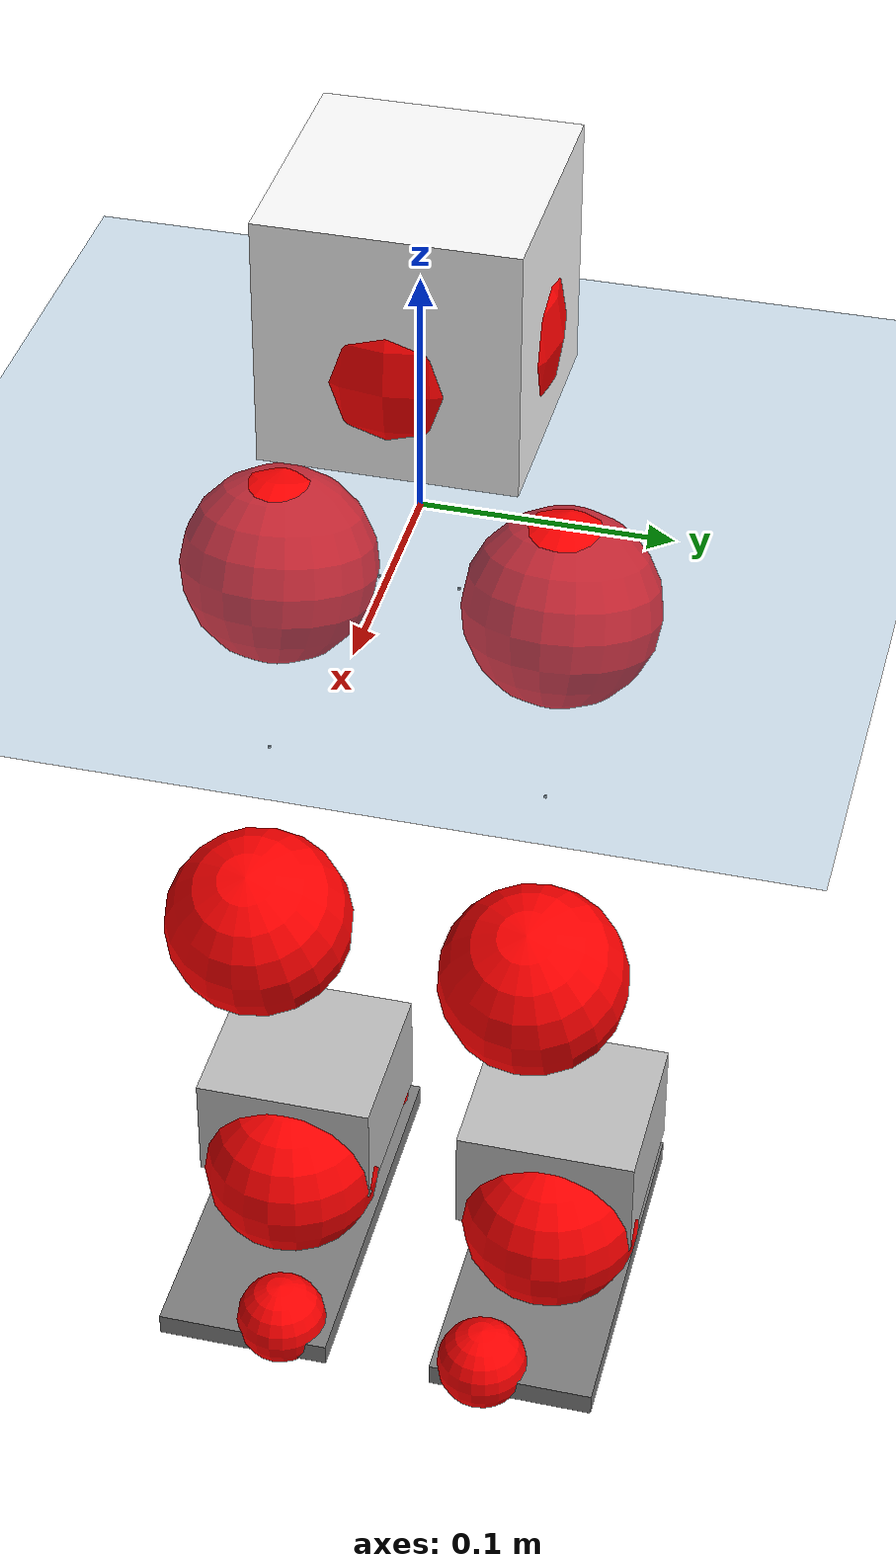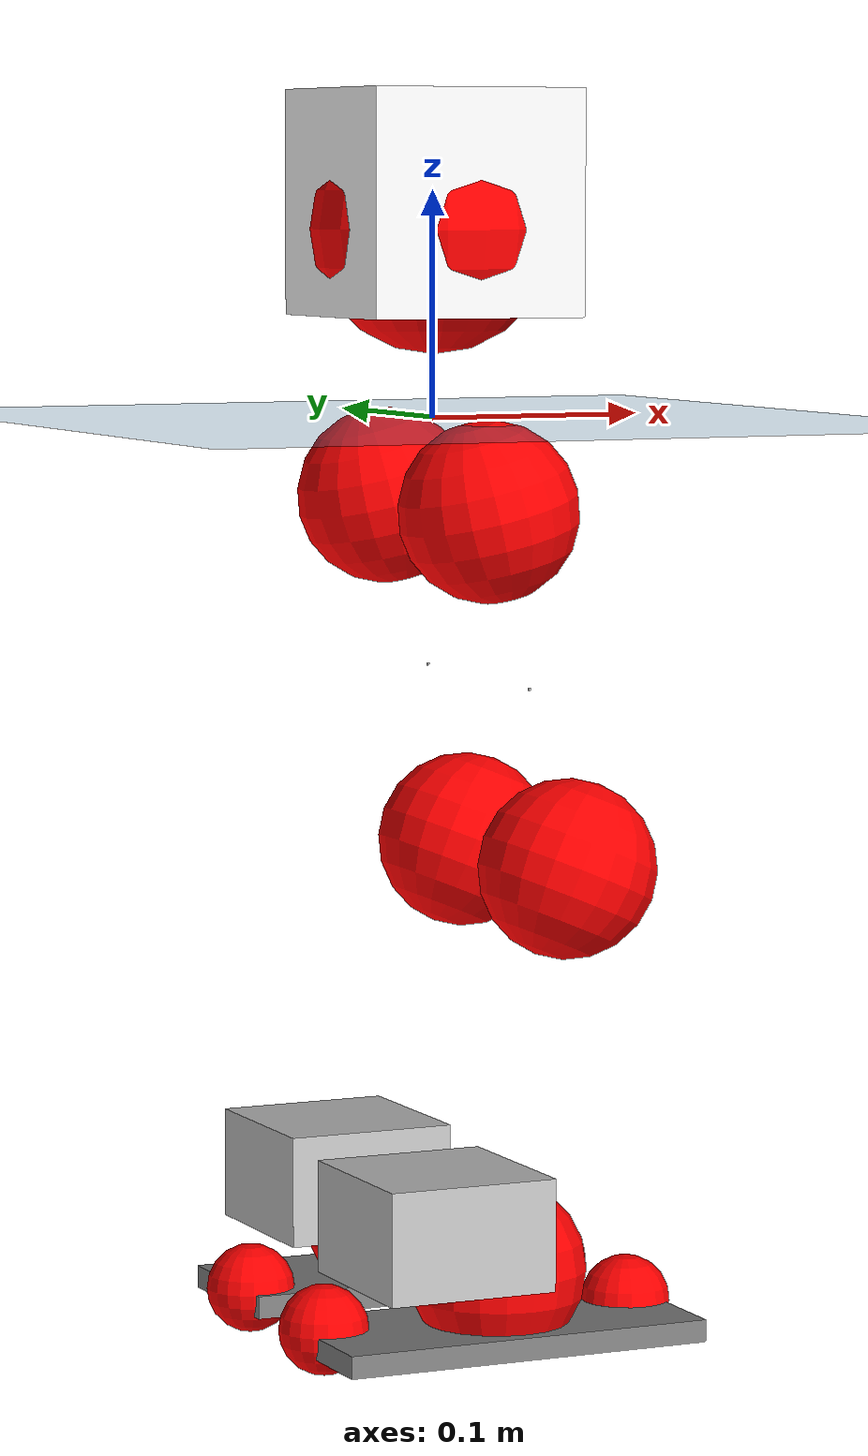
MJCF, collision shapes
<mujoco model="pi_12dof_release_v1">
  <compiler angle="radian" assetdir="assets" balanceinertia="true" inertiafromgeom="false"/>

  <option timestep="0.005" density="1.2" viscosity="2e-05"/>

  <size nkey="1"/>

  <visual>
    <quality shadowsize="8192"/>
    <map shadowclip="0.5"/>
  </visual>

  <default>
    <default class="/">
      <joint armature="0.01" damping="0.01" frictionloss="0.01"/>
      <geom contype="0" conaffinity="0" group="1" solref="-1000 -80"/>
      <site size="0.01 0.005 0.005" group="5"/>
      <general forcelimited="true" biastype="affine" gainprm="20" biasprm="0 -20 -0.5"/>
      <default class="foot">
        <geom size="0.0845 0.036 0.005" type="box" condim="6" group="4" priority="1" friction="0.9 0.2 0.2" solimp="0.015 1 0.005"/>
      </default>
      <default class="reward_collision_sphere">
        <geom group="5" rgba="1 0 0 1"/>
      </default>
    </default>
  </default>

  <asset>
    <texture type="skybox" colorspace="auto" name="//unnamed_texture_0" builtin="gradient" rgb1="0.95 0.95 0.95" rgb2="0.95 0.95 0.95" width="100" height="600"/>
    <texture type="2d" colorspace="auto" name="texplane" builtin="checker" rgb1="0.345 0.575 0.748" rgb2="0.345 0.575 0.748" markrgb="1 1 1" width="512" height="512"/>
    <material name="MatPlane" class="/" texture="texplane" texuniform="true" texrepeat="2 2" specular="0.9"/>
    <mesh name="baselink_1" class="/" file="baselink_1.STL"/>
    <mesh name="r_hip_pitch_link" class="/" file="r_hip_pitch_link.STL"/>
    <mesh name="r_hip_roll_link" class="/" file="r_hip_roll_link.STL"/>
    <mesh name="r_thigh_link" class="/" file="r_thigh_link.STL"/>
    <mesh name="r_calf_link" class="/" file="r_calf_link.STL"/>
    <mesh name="r_ankle_pitch_link" class="/" file="r_ankle_pitch_link.STL"/>
    <mesh name="r_ankle_roll_link" class="/" file="r_ankle_roll_link.STL"/>
    <mesh name="l_hip_pitch_link" class="/" file="l_hip_pitch_link.STL"/>
    <mesh name="l_hip_roll_link" class="/" file="l_hip_roll_link.STL"/>
    <mesh name="l_thigh_link" class="/" file="l_thigh_link.STL"/>
    <mesh name="l_calf_link" class="/" file="l_calf_link.STL"/>
    <mesh name="l_ankle_pitch_link" class="/" file="l_ankle_pitch_link.STL"/>
    <mesh name="l_ankle_roll_link" class="/" file="l_ankle_roll_link.STL"/>
  </asset>

  <worldbody>
    <geom name="floor" class="/" size="100 100 0.125" type="plane" group="0" material="MatPlane"/>
    <light name="toplight_shadow" class="/" pos="0 0 5" dir="0.0990148 0.0990148 -0.990148" type="directional" ambient="0.04 0.04 0.04" diffuse="0.55 0.55 0.55" specular="0.12 0.12 0.12"/>
    <light name="toplight_fill" class="/" pos="0 0 5" dir="0.0990148 0.0990148 -0.990148" type="directional" castshadow="false" ambient="0.04 0.04 0.04" diffuse="0.3 0.3 0.3" specular="0.08 0.08 0.08"/>
    <body name="trunk" pos="0.000334924 -0.000193981 0.000931752" quat="1 9.37677e-05 4.78545e-05 -3.95892e-05">
      <inertial pos="0.00300592 -0.00274003 0.0479907" quat="0.696138 0.00859532 0.0112415 0.717768" mass="2.09645" diaginertia="0.0142686 0.00175049 0.00911423"/>
      <joint name="//unnamed_joint_0" type="free"/>
      <geom name="//unnamed_geom_1" class="/" type="mesh" density="0" rgba="1 1 1 1" mesh="baselink_1"/>
      <geom name="//unnamed_geom_2" class="/" size="0.0497931 0.0497931 0.0497931" pos="0 0 0.0938224" type="box" rgba="1 1 1 1"/>
      <geom name="//unnamed_geom_3" class="reward_collision_sphere" size="0.0547725" pos="0 0 0.0820946"/>
      <site name="imu" class="/" pos="-0.00269836 0.00166312 0.00162326" size="0.00995863"/>
      <camera name="track" class="/" pos="0 -1.44896 0" quat="0.707107 0.707107 0 0" mode="trackcom"/>
      <camera name="ego_camera" class="/" pos="0.0817747 0 0.211101" quat="-0.5 -0.5 0.5 0.5"/>
      <body name="r_hip_pitch_link" pos="-0.00133188 -0.0170963 -0.038867" quat="0.992245 2.34442e-05 -0.124295 0.000189367">
        <inertial pos="0.00135865 -0.0422963 0.000823026" quat="-0.0260109 0.711132 -0.0345501 0.701728" mass="0.363116" diaginertia="0.000165782 1.97092e-05 0.000183183"/>
        <joint name="r_hip_pitch_joint" class="/" pos="0 0 0" axis="0.002562 -0.999967 0.00768139" range="-1.74817 1.24036" armature="0.00975341" damping="0.0230501" frictionloss="0.0109391"/>
        <geom name="//unnamed_geom_4" class="/" type="mesh" density="0" rgba="0.75294 0.75294 0.75294 1" mesh="r_hip_pitch_link"/>
        <geom name="//unnamed_geom_5" class="/" size="0.000497931 0.000497931 0.000497931" type="box" rgba="0.75294 0.75294 0.75294 1"/>
        <body name="r_hip_roll_link" pos="0.00109588 -0.0403651 -0.000538125" quat="0.999999 0.00083625 0.000564784 0.000438644">
          <inertial pos="-0.00112467 0.00185901 -0.0704926" quat="0.706361 -0.0743317 -0.0840308 0.698905" mass="0.379806" diaginertia="0.0005031 5.68647e-05 0.000283763"/>
          <joint name="r_hip_roll_joint" class="/" pos="0 0 0" axis="-0.999995 -0.00191127 0.00251949" range="-0.118007 0.505622" armature="0.0104646" damping="0.0148405" frictionloss="0.00968702"/>
          <geom name="//unnamed_geom_6" class="/" type="mesh" density="0" rgba="0.75294 0.75294 0.75294 1" mesh="r_hip_roll_link"/>
          <geom name="//unnamed_geom_7" class="/" size="0.000497931 0.000497931 0.000497931" type="box" rgba="0.75294 0.75294 0.75294 1"/>
          <geom name="//unnamed_geom_8" class="reward_collision_sphere" size="0.0398345"/>
          <body name="r_thigh_link" pos="-0.000303845 -0.000827786 -0.08019" quat="1 7.29302e-05 7.94963e-05 -0.00021649">
            <inertial pos="-0.00113626 0.000471347 -0.0569043" quat="0.735096 0.677951 0.0016474 0.00361391" mass="0.109975" diaginertia="0.00019227 1.93561e-05 0.000127702"/>
            <joint name="r_thigh_joint" class="/" pos="0 0 0" axis="-0.00450457 0.00161332 -0.999989" range="-0.344669 0.550059" armature="0.0106241" damping="0" frictionloss="0.0110053"/>
            <geom name="//unnamed_geom_9" class="/" type="mesh" density="0" rgba="0.75294 0.75294 0.75294 1" mesh="r_thigh_link"/>
            <geom name="//unnamed_geom_10" class="/" size="0.000497931 0.000497931 0.000497931" type="box" rgba="0.75294 0.75294 0.75294 1"/>
            <body name="r_calf_link" pos="-0.00245269 -0.00197992 -0.0816382" quat="0.947667 0.000120724 0.319261 0.000122613">
              <inertial pos="-8.6567e-05 -0.00184454 -0.0809658" quat="0.999937 0.000145141 -0.00710697 0.00869918" mass="0.810746" diaginertia="0.00537397 0.000698213 0.000380849"/>
              <joint name="r_calf_joint" class="/" pos="0 0 0" axis="-0.00801522 -0.99991 -0.0107745" stiffness="0.00250597" range="-1.63784 0.646404" armature="0.0100521" damping="0.0127767" frictionloss="0.0108748"/>
              <geom name="//unnamed_geom_11" class="/" type="mesh" density="0" rgba="0.75294 0.75294 0.75294 1" mesh="r_calf_link"/>
              <geom name="//unnamed_geom_12" class="/" size="0.000497931 0.000497931 0.000497931" type="box" rgba="0.75294 0.75294 0.75294 1"/>
              <geom name="//unnamed_geom_13" class="reward_collision_sphere" size="0.0398345"/>
              <body name="r_ankle_pitch_link" pos="0.00136032 -0.000840258 -0.166085" quat="0.980069 9.22882e-07 -0.198658 -2.90533e-06">
                <inertial pos="0.00454873 0.00272338 0.00170198" quat="-0.00144024 0.707551 0.00128088 0.706659" mass="0.171734" diaginertia="0.000472501 4.42548e-05 0.00026575"/>
                <joint name="r_ankle_pitch_joint" class="/" pos="0 0 0" axis="-0.00298042 -0.999992 0.00251185" range="-1.30298 0.462601" armature="0.0105804" damping="0.0123489" frictionloss="0.0107932"/>
                <geom name="//unnamed_geom_14" class="/" type="mesh" density="0" rgba="0.75294 0.75294 0.75294 1" mesh="r_ankle_pitch_link"/>
                <geom name="//unnamed_geom_15" class="/" size="0.0388386 0.0398345 0.0248966" type="box" rgba="0.75294 0.75294 0.75294 1"/>
                <body name="r_ankle_roll_link" pos="0.0844037 0.00121492 0.00189097" quat="1 3.89722e-05 -0.000122924 0.000111198">
                  <inertial pos="-0.0260011 0.000200393 -0.0165716" quat="0.555855 0.432067 0.435436 0.561016" mass="0.527162" diaginertia="0.00181634 0.000212869 0.000647964"/>
                  <joint name="r_ankle_roll_joint" class="/" pos="0 0 0" axis="-0.999937 0.0053542 -0.00982696" range="-0.10449 0.173272" armature="0.00967042" damping="0.00833653" frictionloss="0.00948688"/>
                  <geom name="//unnamed_geom_16" class="/" type="mesh" density="0" rgba="0.75294 0.75294 0.75294 1" mesh="r_ankle_roll_link"/>
                  <geom name="//unnamed_geom_17" class="/" type="mesh" rgba="0.75294 0.75294 0.75294 1" mesh="r_ankle_roll_link"/>
                  <geom name="right_foot" class="foot" size="0.0850818 0.038167 0.00498217" pos="-0.0556068 0 -0.0516023"/>
                  <geom name="//unnamed_geom_19" class="reward_collision_sphere" size="0.0398345" pos="-0.0545164 0 -0.0234556"/>
                  <geom name="//unnamed_geom_20" class="reward_collision_sphere" size="0.0199173" pos="0.0163549 0.0144896 -0.0469112"/>
                  <geom name="//unnamed_geom_21" class="reward_collision_sphere" size="0.0199173" pos="-0.130839 0.0144896 -0.0469112"/>
                  <site name="right_foot" class="foot" pos="-0.0556068 0 -0.0516023" size="0.00995863"/>
                </body>
              </body>
            </body>
          </body>
        </body>
      </body>
      <body name="l_hip_pitch_link" pos="0.00155503 0.0162125 -0.0368703" quat="0.99221 -6.90373e-05 -0.12458 0.000218366">
        <inertial pos="0.000713987 0.0396578 -0.00029839" quat="-0.0376807 0.704848 0.0275519 0.707821" mass="0.378377" diaginertia="0.00020073 2.14399e-05 0.000225159"/>
        <joint name="l_hip_pitch_joint" class="/" pos="0 0 0" axis="-0.00335001 0.999994 0.00128652" stiffness="0.00215093" range="-1.2364 1.78347" armature="0.00973244" damping="0.0153511" frictionloss="0.0100632"/>
        <geom name="//unnamed_geom_22" class="/" type="mesh" density="0" rgba="0.75294 0.75294 0.75294 1" mesh="l_hip_pitch_link"/>
        <geom name="//unnamed_geom_23" class="/" size="0.000497931 0.000497931 0.000497931" type="box" rgba="0.75294 0.75294 0.75294 1"/>
        <body name="l_hip_roll_link" pos="1.06921e-06 0.0414938 -0.00145285" quat="0.999999 -0.000438619 -0.000917267 -3.72421e-05">
          <inertial pos="-0.00220071 0.00231385 -0.0723267" quat="0.698104 -0.0717495 -0.0770238 0.708217" mass="0.373902" diaginertia="0.00051762 5.52254e-05 0.000291513"/>
          <joint name="l_hip_roll_joint" class="/" pos="0 0 0" axis="-1 -0.000142659 -4.89604e-05" range="-0.496471 0.100594" armature="0.0110789" damping="0.00627035" frictionloss="0.0101846"/>
          <geom name="//unnamed_geom_24" class="/" type="mesh" density="0" rgba="0.75294 0.75294 0.75294 1" mesh="l_hip_roll_link"/>
          <geom name="//unnamed_geom_25" class="/" size="0.000497931 0.000497931 0.000497931" type="box" rgba="0.75294 0.75294 0.75294 1"/>
          <geom name="//unnamed_geom_26" class="reward_collision_sphere" size="0.0398345"/>
          <body name="l_thigh_link" pos="0.00152215 -3.97317e-06 -0.0808825" quat="1 7.23926e-05 0.000257004 7.873e-05">
            <inertial pos="-5.81144e-05 -0.000296127 -0.0560303" quat="0.675824 0.73706 -0.00203671 -2.62588e-05" mass="0.112761" diaginertia="0.000191642 1.87734e-05 0.000127201"/>
            <joint name="l_thigh_joint" class="/" pos="0 0 0" axis="0.000620217 -0.00104652 -0.999999" range="-0.618449 0.288293" armature="0.0102068" damping="0" frictionloss="0.00947053"/>
            <geom name="//unnamed_geom_27" class="/" type="mesh" density="0" rgba="0.75294 0.75294 0.75294 1" mesh="l_thigh_link"/>
            <geom name="//unnamed_geom_28" class="/" size="0.000497931 0.000497931 0.000497931" type="box" rgba="0.75294 0.75294 0.75294 1"/>
            <body name="l_calf_link" pos="-0.00222666 0.00110469 -0.0837813" quat="0.947515 0.000387226 0.319708 0.00106287">
              <inertial pos="0.000925761 0.00342 -0.0808488" quat="0.999977 0.00382288 0.00072446 0.00550037" mass="0.812393" diaginertia="0.00548204 0.000696531 0.000402463"/>
              <joint name="l_calf_joint" class="/" pos="0 0 0" axis="0.000423548 0.999999 -0.00136669" range="-0.621512 1.67092" armature="0.0104357" damping="0.00554448" frictionloss="0.00954876"/>
              <geom name="//unnamed_geom_29" class="/" type="mesh" density="0" rgba="0.75294 0.75294 0.75294 1" mesh="l_calf_link"/>
              <geom name="//unnamed_geom_30" class="/" size="0.000497931 0.000497931 0.000497931" type="box" rgba="0.75294 0.75294 0.75294 1"/>
              <geom name="//unnamed_geom_31" class="reward_collision_sphere" size="0.0398345"/>
              <body name="l_ankle_pitch_link" pos="-1.15231e-05 0.00207769 -0.162833" quat="0.980141 -0.000165339 -0.198301 0.000297686">
                <inertial pos="0.00514417 -0.00149504 -0.000221255" quat="-0.00251772 0.707526 0.00126269 0.706682" mass="0.170777" diaginertia="0.00046821 4.44777e-05 0.000263854"/>
                <joint name="l_ankle_pitch_joint" class="/" pos="0 0 0" axis="0.00149012 0.999996 0.00251953" stiffness="0.00770904" range="-0.508639 1.30701" armature="0.0091598" damping="0.0148435" frictionloss="0.0100111"/>
                <geom name="//unnamed_geom_32" class="/" type="mesh" density="0" rgba="0.75294 0.75294 0.75294 1" mesh="l_ankle_pitch_link"/>
                <geom name="//unnamed_geom_33" class="/" size="0.0388386 0.0398345 0.0248966" type="box" rgba="0.75294 0.75294 0.75294 1"/>
                <body name="l_ankle_roll_link" pos="0.0824145 0.00129093 -0.000530196" quat="1 9.85381e-05 -2.925e-05 -0.000168842">
                  <inertial pos="-0.0263366 -1.91623e-05 -0.0168753" quat="0.559764 0.430837 0.43458 0.558735" mass="0.513196" diaginertia="0.00172465 0.00020376 0.000623855"/>
                  <joint name="l_ankle_roll_joint" class="/" pos="0 0 0" axis="-1 0.000185987 -0.000592992" range="-0.109772 0.148895" armature="0.00985277" damping="0" frictionloss="0.0104689"/>
                  <geom name="//unnamed_geom_34" class="/" type="mesh" density="0" rgba="0.75294 0.75294 0.75294 1" mesh="l_ankle_roll_link"/>
                  <geom name="//unnamed_geom_35" class="/" type="mesh" rgba="0.75294 0.75294 0.75294 1" mesh="l_ankle_roll_link"/>
                  <geom name="left_foot" class="foot" size="0.0804905 0.0362438 0.00512788" pos="-0.0556068 0 -0.0516023"/>
                  <geom name="//unnamed_geom_37" class="reward_collision_sphere" size="0.0398345" pos="-0.0545164 0 -0.0234556"/>
                  <geom name="//unnamed_geom_38" class="reward_collision_sphere" size="0.0199173" pos="0.0163549 -0.0144896 -0.0469112"/>
                  <geom name="//unnamed_geom_39" class="reward_collision_sphere" size="0.0199173" pos="-0.130839 -0.0144896 -0.0469112"/>
                  <site name="left_foot" class="foot" pos="-0.0556068 0 -0.0516023" size="0.00995863"/>
                </body>
              </body>
            </body>
          </body>
        </body>
      </body>
    </body>
  </worldbody>

  <contact>
    <pair class="/" geom1="floor" geom2="right_foot" name="//unnamed_contact_1"/>
    <pair class="/" geom1="floor" geom2="left_foot" name="//unnamed_contact_0"/>
  </contact>

  <actuator>
    <general name="r_hip_pitch_joint" class="/" joint="r_hip_pitch_joint" forcerange="-21.7029 21.7029" gainprm="20.3719" biasprm="0 -20.3719 -0.481586"/>
    <general name="r_hip_roll_joint" class="/" joint="r_hip_roll_joint" forcerange="-22.732 22.732" gainprm="20.3719" biasprm="0 -20.3719 -0.481586"/>
    <general name="r_thigh_joint" class="/" joint="r_thigh_joint" forcerange="-21.0273 21.0273" gainprm="20.3719" biasprm="0 -20.3719 -0.481586"/>
    <general name="r_calf_joint" class="/" joint="r_calf_joint" forcerange="-21.2111 21.2111" gainprm="20.3719" biasprm="0 -20.3719 -0.481586"/>
    <general name="r_ankle_pitch_joint" class="/" joint="r_ankle_pitch_joint" forcerange="-20.8821 20.8821" gainprm="20.3719" biasprm="0 -20.3719 -0.481586"/>
    <general name="r_ankle_roll_joint" class="/" joint="r_ankle_roll_joint" forcerange="-21.5224 21.5224" gainprm="20.3719" biasprm="0 -20.3719 -0.481586"/>
    <general name="l_hip_pitch_joint" class="/" joint="l_hip_pitch_joint" forcerange="-20.2793 20.2793" gainprm="20.3719" biasprm="0 -20.3719 -0.481586"/>
    <general name="l_hip_roll_joint" class="/" joint="l_hip_roll_joint" forcerange="-20.8015 20.8015" gainprm="20.3719" biasprm="0 -20.3719 -0.481586"/>
    <general name="l_thigh_joint" class="/" joint="l_thigh_joint" forcerange="-21.007 21.007" gainprm="20.3719" biasprm="0 -20.3719 -0.481586"/>
    <general name="l_calf_joint" class="/" joint="l_calf_joint" forcerange="-21.4504 21.4504" gainprm="20.3719" biasprm="0 -20.3719 -0.481586"/>
    <general name="l_ankle_pitch_joint" class="/" joint="l_ankle_pitch_joint" forcerange="-20.8953 20.8953" gainprm="20.3719" biasprm="0 -20.3719 -0.481586"/>
    <general name="l_ankle_roll_joint" class="/" joint="l_ankle_roll_joint" forcerange="-20.3893 20.3893" gainprm="20.3719" biasprm="0 -20.3719 -0.481586"/>
  </actuator>

  <sensor>
    <gyro site="imu" name="imu_angular_velocity"/>
    <velocimeter site="imu" name="imu_linear_velocity"/>
    <framelinvel objtype="site" objname="left_foot" name="left_foot_global_linear_velocity"/>
    <framelinvel objtype="site" objname="right_foot" name="right_foot_global_linear_velocity"/>
  </sensor>

  <keyframe>
    <key name="home" qpos="0 0 0.291 1 0 0 0 0.4 0 0 -0.8 0.4 0 -0.4 0 0 0.8 -0.4 0"/>
  </keyframe>
</mujoco>
